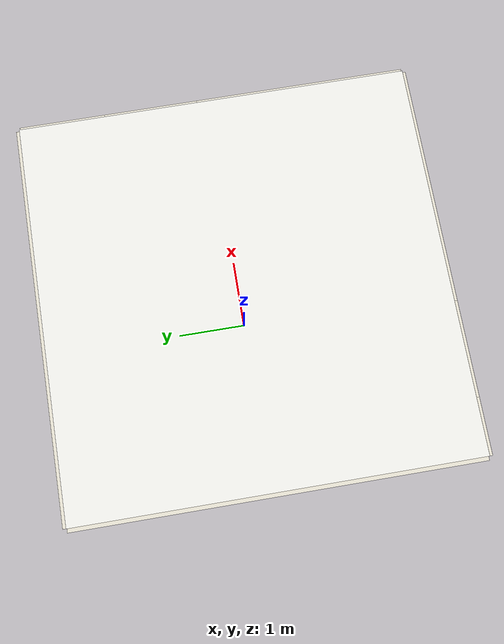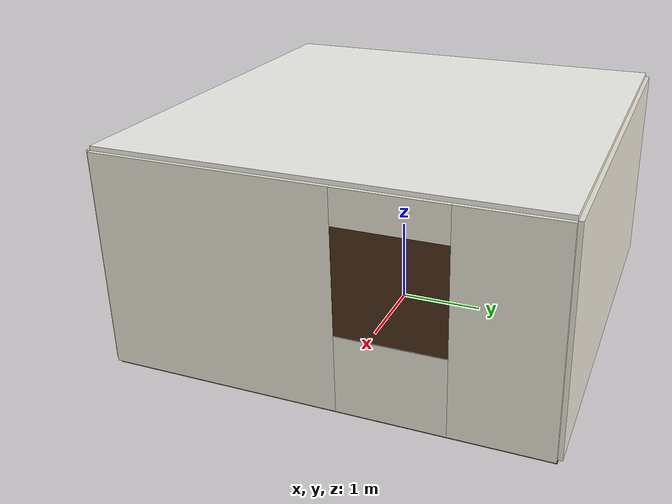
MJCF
<mujoco model="apartment_living_kitchen">
  <compiler angle="radian" autolimits="true"/>
  <option timestep="0.002" integrator="implicitfast" gravity="0 0 -9.81" cone="elliptic"/>
  <size memory="100M"/>

  <visual>
    <headlight ambient="0.35 0.35 0.35" diffuse="0.6 0.6 0.6" specular="0.2 0.2 0.2"/>
    <rgba haze="0.15 0.25 0.35 1"/>
  </visual>

  <asset>
    <texture name="tex_floor" type="2d" builtin="checker" rgb1="0.42 0.28 0.17" rgb2="0.50 0.35 0.22" width="300" height="300" mark="none"/>
    <material name="mat_floor_wood" texture="tex_floor" texrepeat="10 10" texuniform="true" specular="0.2" shininess="0.3" reflectance="0.05"/>
    <material name="mat_wall_paint" rgba="0.93 0.91 0.85 1" specular="0.1" shininess="0.05"/>
    <material name="mat_ceiling" rgba="0.97 0.97 0.95 1" specular="0.05" shininess="0.02"/>
    <material name="mat_cabinet_wood" rgba="0.45 0.28 0.15 1" specular="0.2" shininess="0.15"/>
    <material name="mat_countertop" rgba="0.22 0.22 0.24 1" specular="0.5" shininess="0.35" reflectance="0.1"/>
    <material name="mat_steel" rgba="0.75 0.76 0.78 1" specular="0.8" shininess="0.6" reflectance="0.3"/>
    <material name="mat_dark_appliance" rgba="0.12 0.12 0.13 1" specular="0.5" shininess="0.4"/>
    <material name="mat_fridge" rgba="0.88 0.89 0.90 1" specular="0.6" shininess="0.5" reflectance="0.2"/>
    <material name="mat_sofa_fabric" rgba="0.33 0.38 0.47 1" specular="0.05" shininess="0.02"/>
    <material name="mat_wood_furniture" rgba="0.55 0.38 0.22 1" specular="0.15" shininess="0.1"/>
    <material name="mat_wood_desk" rgba="0.60 0.42 0.25 1" specular="0.15" shininess="0.1"/>
    <material name="mat_glass" rgba="0.75 0.88 0.92 0.35" specular="0.9" shininess="0.9"/>
    <material name="mat_frame_wood" rgba="0.30 0.18 0.10 1" specular="0.1" shininess="0.05"/>
    <material name="mat_chrome" rgba="0.85 0.85 0.88 1" specular="0.9" shininess="0.8" reflectance="0.4"/>
  </asset>

  <default>
    <geom type="box"/>
    <default class="collision">
      <geom group="3" contype="1" conaffinity="1" condim="3" friction="0.9 0.01 0.0001" rgba="1 0 0 0"/>
    </default>
    <default class="visual">
      <geom group="1" contype="0" conaffinity="0" density="0"/>
    </default>
  </default>

  <worldbody>
    <light name="sun" directional="true" pos="0 0 5" dir="0.2 0.2 -1" diffuse="0.35 0.35 0.33" specular="0.1 0.1 0.1"/>
    <light name="ceiling_light_kitchen" pos="-0.6 1.6 2.4" dir="0 0 -1" diffuse="0.5 0.5 0.47" specular="0.1 0.1 0.1"/>
    <light name="ceiling_light_living" pos="-1.5 -0.2 2.4" dir="0 0 -1" diffuse="0.5 0.5 0.47" specular="0.1 0.1 0.1"/>
    <light name="ceiling_light_study" pos="1.2 -1.5 2.4" dir="0 0 -1" diffuse="0.5 0.5 0.47" specular="0.1 0.1 0.1"/>

    <!-- FLOOR -->
    <body name="floor" pos="0 0 0">
      <geom name="floor_collision" class="collision" size="2.5 2.5 0.025" pos="0 0 -0.025" friction="1.0 0.005 0.0001" condim="3"/>
      <geom name="floor_visual" class="visual" size="2.5 2.5 0.025" pos="0 0 -0.025" material="mat_floor_wood"/>
    </body>

    <!-- CEILING -->
    <body name="ceiling" pos="0 0 0">
      <geom name="ceiling_collision" class="collision" size="2.5 2.5 0.025" pos="0 0 2.525"/>
      <geom name="ceiling_visual" class="visual" size="2.5 2.5 0.025" pos="0 0 2.525" material="mat_ceiling"/>
    </body>

    <!-- NORTH WALL (solid, behind kitchen) -->
    <body name="wall_north" pos="0 2.5 1.25">
      <geom name="wall_north_collision" class="collision" size="2.5 0.05 1.25" pos="0 0 0"/>
      <geom name="wall_north_visual" class="visual" size="2.5 0.05 1.25" pos="0 0 0" material="mat_wall_paint"/>
    </body>

    <!-- WEST WALL (solid, behind sofa) -->
    <body name="wall_west" pos="-2.5 0 1.25">
      <geom name="wall_west_collision" class="collision" size="0.05 2.5 1.25" pos="0 0 0"/>
      <geom name="wall_west_visual" class="visual" size="0.05 2.5 1.25" pos="0 0 0" material="mat_wall_paint"/>
    </body>

    <!-- SOUTH WALL with study-area window -->
    <body name="wall_south" pos="0 -2.5 0">
      <geom name="wall_south_pier_left_collision" class="collision" size="0.35 0.05 1.25" pos="-2.15 0 1.25"/>
      <geom name="wall_south_pier_left_visual" class="visual" size="0.35 0.05 1.25" pos="-2.15 0 1.25" material="mat_wall_paint"/>
      <geom name="wall_south_pier_right_collision" class="collision" size="1.55 0.05 1.25" pos="0.95 0 1.25"/>
      <geom name="wall_south_pier_right_visual" class="visual" size="1.55 0.05 1.25" pos="0.95 0 1.25" material="mat_wall_paint"/>
      <geom name="wall_south_sill_collision" class="collision" size="0.6 0.05 0.45" pos="-1.2 0 0.45"/>
      <geom name="wall_south_sill_visual" class="visual" size="0.6 0.05 0.45" pos="-1.2 0 0.45" material="mat_wall_paint"/>
      <geom name="wall_south_lintel_collision" class="collision" size="0.6 0.05 0.2" pos="-1.2 0 2.3"/>
      <geom name="wall_south_lintel_visual" class="visual" size="0.6 0.05 0.2" pos="-1.2 0 2.3" material="mat_wall_paint"/>
      <geom name="window_south_frame_visual" class="visual" size="0.62 0.04 0.62" pos="-1.2 0 1.5" material="mat_frame_wood"/>
      <geom name="window_south_glass_collision" class="collision" size="0.56 0.015 0.56" pos="-1.2 0.02 1.5"/>
      <geom name="window_south_glass_visual" class="visual" size="0.56 0.015 0.56" pos="-1.2 0.02 1.5" material="mat_glass"/>
    </body>

    <!-- EAST WALL with living-room window -->
    <body name="wall_east" pos="2.5 0 0">
      <geom name="wall_east_pier_bottom_collision" class="collision" size="0.05 1.35 1.25" pos="0 -1.15 1.25"/>
      <geom name="wall_east_pier_bottom_visual" class="visual" size="0.05 1.35 1.25" pos="0 -1.15 1.25" material="mat_wall_paint"/>
      <geom name="wall_east_pier_top_collision" class="collision" size="0.05 0.55 1.25" pos="0 1.95 1.25"/>
      <geom name="wall_east_pier_top_visual" class="visual" size="0.05 0.55 1.25" pos="0 1.95 1.25" material="mat_wall_paint"/>
      <geom name="wall_east_sill_collision" class="collision" size="0.05 0.6 0.45" pos="0 0.8 0.45"/>
      <geom name="wall_east_sill_visual" class="visual" size="0.05 0.6 0.45" pos="0 0.8 0.45" material="mat_wall_paint"/>
      <geom name="wall_east_lintel_collision" class="collision" size="0.05 0.6 0.2" pos="0 0.8 2.3"/>
      <geom name="wall_east_lintel_visual" class="visual" size="0.05 0.6 0.2" pos="0 0.8 2.3" material="mat_wall_paint"/>
      <geom name="window_east_frame_visual" class="visual" size="0.04 0.62 0.62" pos="0 0.8 1.5" material="mat_frame_wood"/>
      <geom name="window_east_glass_collision" class="collision" size="0.015 0.56 0.56" pos="-0.02 0.8 1.5"/>
      <geom name="window_east_glass_visual" class="visual" size="0.015 0.56 0.56" pos="-0.02 0.8 1.5" material="mat_glass"/>
    </body>

    <!-- KITCHEN (along north wall) -->
    <body name="fridge" pos="-2.0 2.125 0.9">
      <geom name="fridge_collision" class="collision" size="0.35 0.325 0.9"/>
      <geom name="fridge_visual" class="visual" size="0.35 0.325 0.9" material="mat_fridge"/>
    </body>

    <body name="lower_cabinets" pos="-0.15 2.15 0.435">
      <geom name="lower_cabinets_collision" class="collision" size="1.4 0.3 0.435"/>
      <geom name="lower_cabinets_visual" class="visual" size="1.4 0.3 0.435" material="mat_cabinet_wood"/>
    </body>

    <body name="countertop" pos="-0.15 2.125 0.885">
      <geom name="countertop_collision" class="collision" size="1.45 0.325 0.015"/>
      <geom name="countertop_visual" class="visual" size="1.45 0.325 0.015" material="mat_countertop"/>
    </body>

    <body name="kitchen_sink" pos="-1.0 2.1 0.905">
      <geom name="sink_basin_visual" class="visual" size="0.25 0.18 0.02" material="mat_steel"/>
    </body>

    <body name="kitchen_faucet" pos="-1.0 2.35 0.9">
      <geom name="faucet_base_visual" class="visual" type="capsule" size="0.015" fromto="0 0 0 0 0 0.18" material="mat_chrome"/>
      <geom name="faucet_spout_visual" class="visual" type="capsule" size="0.012" fromto="0 0 0.18 0 -0.15 0.18" material="mat_chrome"/>
    </body>

    <body name="stove" pos="0.5 2.15 0.435">
      <geom name="stove_collision" class="collision" size="0.3 0.3 0.435"/>
      <geom name="stove_body_visual" class="visual" size="0.3 0.3 0.435" material="mat_dark_appliance"/>
      <geom name="stove_cooktop_visual" class="visual" size="0.3 0.3 0.01" pos="0 0 0.445" material="mat_steel"/>
    </body>

    <body name="range_hood" pos="0.5 2.3 2.0">
      <geom name="range_hood_collision" class="collision" size="0.3 0.2 0.15"/>
      <geom name="range_hood_visual" class="visual" size="0.3 0.2 0.15" material="mat_steel"/>
    </body>

    <body name="upper_cabinets_west" pos="-0.925 2.275 1.8">
      <geom name="upper_cabinets_west_collision" class="collision" size="0.625 0.175 0.35"/>
      <geom name="upper_cabinets_west_visual" class="visual" size="0.625 0.175 0.35" material="mat_cabinet_wood"/>
    </body>

    <body name="upper_cabinets_east" pos="0.625 2.275 1.8">
      <geom name="upper_cabinets_east_collision" class="collision" size="0.625 0.175 0.35"/>
      <geom name="upper_cabinets_east_visual" class="visual" size="0.625 0.175 0.35" material="mat_cabinet_wood"/>
    </body>

    <!-- LIVING ROOM (along west wall) -->
    <body name="sofa" pos="-2.0 0 0">
      <geom name="sofa_collision" class="collision" size="0.45 1.05 0.45" pos="0 0 0.45"/>
      <geom name="sofa_seat_visual" class="visual" size="0.4 0.95 0.215" pos="-0.05 0 0.215" material="mat_sofa_fabric"/>
      <geom name="sofa_backrest_visual" class="visual" size="0.08 0.95 0.45" pos="-0.37 0 0.45" material="mat_sofa_fabric"/>
      <geom name="sofa_armrest_south_visual" class="visual" size="0.4 0.08 0.35" pos="-0.05 -0.97 0.35" material="mat_sofa_fabric"/>
      <geom name="sofa_armrest_north_visual" class="visual" size="0.4 0.08 0.35" pos="-0.05 0.97 0.35" material="mat_sofa_fabric"/>
    </body>

    <body name="coffee_table" pos="-1.1 0 0">
      <geom name="coffee_table_collision" class="collision" size="0.5 0.3 0.2" pos="0 0 0.2"/>
      <geom name="coffee_table_top_visual" class="visual" size="0.5 0.3 0.02" pos="0 0 0.4" material="mat_wood_furniture"/>
      <geom name="coffee_table_leg1_visual" class="visual" type="cylinder" size="0.02 0.2" pos="-0.44 -0.24 0.2" material="mat_wood_furniture"/>
      <geom name="coffee_table_leg2_visual" class="visual" type="cylinder" size="0.02 0.2" pos="-0.44 0.24 0.2" material="mat_wood_furniture"/>
      <geom name="coffee_table_leg3_visual" class="visual" type="cylinder" size="0.02 0.2" pos="0.44 -0.24 0.2" material="mat_wood_furniture"/>
      <geom name="coffee_table_leg4_visual" class="visual" type="cylinder" size="0.02 0.2" pos="0.44 0.24 0.2" material="mat_wood_furniture"/>
    </body>

    <body name="tv_stand" pos="2.225 -1.5 0">
      <geom name="tv_stand_collision" class="collision" size="0.225 0.6 0.25" pos="0 0 0.25"/>
      <geom name="tv_stand_visual" class="visual" size="0.225 0.6 0.25" pos="0 0 0.25" material="mat_wood_furniture"/>
      <geom name="tv_screen_visual" class="visual" size="0.03 0.5 0.3" pos="0.2 0 1.1" material="mat_dark_appliance"/>
    </body>

    <!-- STUDY AREA (near south window) -->
    <body name="desk" pos="-1.5 -2.15 0">
      <geom name="desk_collision" class="collision" size="0.5 0.3 0.365" pos="0 0 0.365"/>
      <geom name="desk_top_visual" class="visual" size="0.5 0.3 0.02" pos="0 0 0.73" material="mat_wood_desk"/>
      <geom name="desk_leg1_visual" class="visual" type="cylinder" size="0.02 0.355" pos="-0.48 -0.28 0.355" material="mat_wood_desk"/>
      <geom name="desk_leg2_visual" class="visual" type="cylinder" size="0.02 0.355" pos="-0.48 0.28 0.355" material="mat_wood_desk"/>
      <geom name="desk_leg3_visual" class="visual" type="cylinder" size="0.02 0.355" pos="0.48 -0.28 0.355" material="mat_wood_desk"/>
      <geom name="desk_leg4_visual" class="visual" type="cylinder" size="0.02 0.355" pos="0.48 0.28 0.355" material="mat_wood_desk"/>
      <geom name="desk_drawers_visual" class="visual" size="0.18 0.28 0.15" pos="0.2 0.05 0.43" material="mat_wood_desk"/>
    </body>

    <body name="desk_chair" pos="-1.5 -1.6 0">
      <geom name="desk_chair_collision" class="collision" size="0.22 0.22 0.405" pos="0 0 0.405"/>
      <geom name="desk_chair_seat_visual" class="visual" size="0.2 0.2 0.02" pos="0 0 0.45" material="mat_sofa_fabric"/>
      <geom name="desk_chair_back_visual" class="visual" size="0.02 0.2 0.18" pos="-0.18 0 0.63" material="mat_sofa_fabric"/>
      <geom name="desk_chair_leg1_visual" class="visual" type="cylinder" size="0.015 0.225" pos="-0.17 -0.17 0.225" material="mat_chrome"/>
      <geom name="desk_chair_leg2_visual" class="visual" type="cylinder" size="0.015 0.225" pos="-0.17 0.17 0.225" material="mat_chrome"/>
      <geom name="desk_chair_leg3_visual" class="visual" type="cylinder" size="0.015 0.225" pos="0.17 -0.17 0.225" material="mat_chrome"/>
      <geom name="desk_chair_leg4_visual" class="visual" type="cylinder" size="0.015 0.225" pos="0.17 0.17 0.225" material="mat_chrome"/>
    </body>
  </worldbody>

  <keyframe>
    <key name="home"/>
  </keyframe>
</mujoco>
